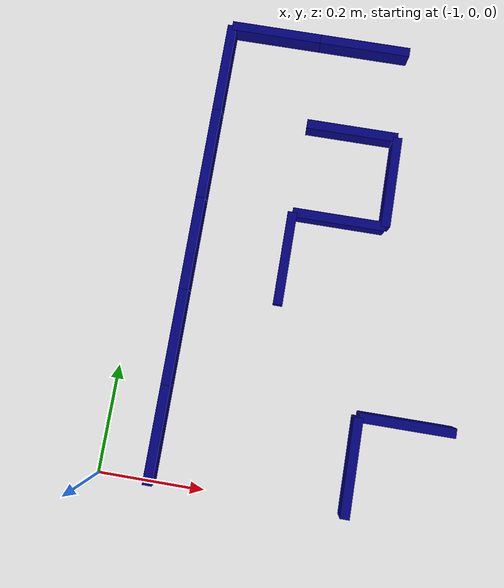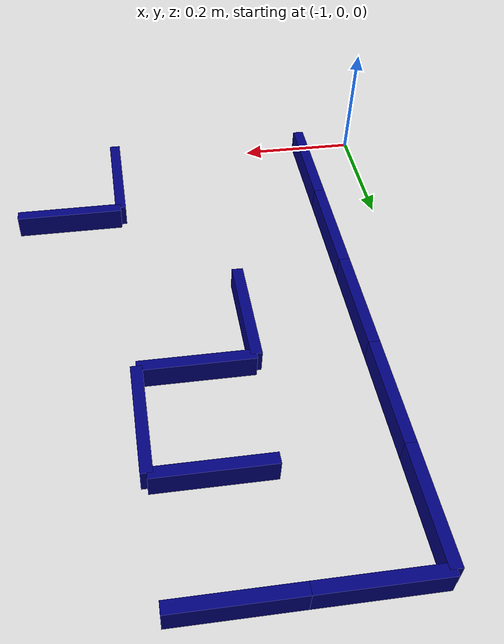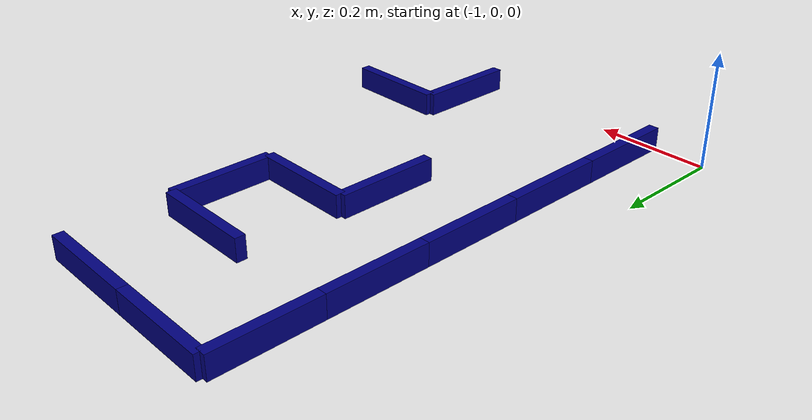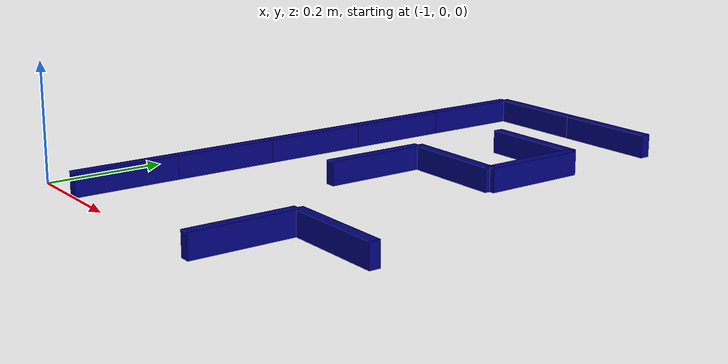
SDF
<sdf version="1.6">
 <world name="room">
  <include><uri>model://sun</uri></include>
  <model name="wall1">
   <static>true</static>
   <pose>-0.63 0.72 0.02 0 0 0</pose>
   <link name="tile1">
    <pose>0 0 0.001 0 0 0</pose>
    <visual name="visual">
     <geometry><box><size>0.18 0.018000000000000002 0.04</size></box></geometry>
     <material><ambient>0 0 0.5 0</ambient></material>
    </visual>
    <collision name="collision">
     <geometry><box><size>0.18 0.018000000000000002 0.04</size></box></geometry>
    </collision>
   </link>
  </model>
  <model name="wall5">
   <static>true</static>
   <pose>-0.54 0.63 0.02 0 0 0</pose>
   <link name="tile5">
    <pose>0 0 0.001 0 0 0</pose>
    <visual name="visual">
     <geometry><box><size>0.018000000000000002 0.18 0.04</size></box></geometry>
     <material><ambient>0 0 0.5 0</ambient></material>
    </visual>
    <collision name="collision">
     <geometry><box><size>0.018000000000000002 0.18 0.04</size></box></geometry>
    </collision>
   </link>
  </model>
  <model name="wall12">
   <static>true</static>
   <pose>-0.72 0.45 0.02 0 0 0</pose>
   <link name="tile12">
    <pose>0 0 0.001 0 0 0</pose>
    <visual name="visual">
     <geometry><box><size>0.018000000000000002 0.18 0.04</size></box></geometry>
     <material><ambient>0 0 0.5 0</ambient></material>
    </visual>
    <collision name="collision">
     <geometry><box><size>0.018000000000000002 0.18 0.04</size></box></geometry>
    </collision>
   </link>
  </model>
  <model name="wall13">
   <static>true</static>
   <pose>-0.63 0.54 0.02 0 0 0</pose>
   <link name="tile13">
    <pose>0 0 0.001 0 0 0</pose>
    <visual name="visual">
     <geometry><box><size>0.18 0.018000000000000002 0.04</size></box></geometry>
     <material><ambient>0 0 0.5 0</ambient></material>
    </visual>
    <collision name="collision">
     <geometry><box><size>0.18 0.018000000000000002 0.04</size></box></geometry>
    </collision>
   </link>
  </model>
  <model name="wall20">
   <static>true</static>
   <pose>-0.45 0.18 0.02 0 0 0</pose>
   <link name="tile20">
    <pose>0 0 0.001 0 0 0</pose>
    <visual name="visual">
     <geometry><box><size>0.18 0.018000000000000002 0.04</size></box></geometry>
     <material><ambient>0 0 0.5 0</ambient></material>
    </visual>
    <collision name="collision">
     <geometry><box><size>0.18 0.018000000000000002 0.04</size></box></geometry>
    </collision>
   </link>
  </model>
  <model name="wall26">
   <static>true</static>
   <pose>-0.54 0.09 0.02 0 0 0</pose>
   <link name="tile26">
    <pose>0 0 0.001 0 0 0</pose>
    <visual name="visual">
     <geometry><box><size>0.018000000000000002 0.18 0.04</size></box></geometry>
     <material><ambient>0 0 0.5 0</ambient></material>
    </visual>
    <collision name="collision">
     <geometry><box><size>0.018000000000000002 0.18 0.04</size></box></geometry>
    </collision>
   </link>
  </model>
  <model name="wall64">
   <static>true</static>
   <pose>-0.81 0.9 0.02 0 0 0</pose>
   <link name="tile64">
    <pose>0 0 0.001 0 0 0</pose>
    <visual name="visual">
     <geometry><box><size>0.18 0.018000000000000002 0.04</size></box></geometry>
     <material><ambient>0 0 0.5 0</ambient></material>
    </visual>
    <collision name="collision">
     <geometry><box><size>0.18 0.018000000000000002 0.04</size></box></geometry>
    </collision>
   </link>
  </model>
  <model name="wall65">
   <static>true</static>
   <pose>-0.63 0.9 0.02 0 0 0</pose>
   <link name="tile65">
    <pose>0 0 0.001 0 0 0</pose>
    <visual name="visual">
     <geometry><box><size>0.18 0.018000000000000002 0.04</size></box></geometry>
     <material><ambient>0 0 0.5 0</ambient></material>
    </visual>
    <collision name="collision">
     <geometry><box><size>0.18 0.018000000000000002 0.04</size></box></geometry>
    </collision>
   </link>
  </model>
  <model name="wall84">
   <static>true</static>
   <pose>-0.9 0.81 0.02 0 0 0</pose>
   <link name="tile84">
    <pose>0 0 0.001 0 0 0</pose>
    <visual name="visual">
     <geometry><box><size>0.018000000000000002 0.18 0.04</size></box></geometry>
     <material><ambient>0 0 0.5 0</ambient></material>
    </visual>
    <collision name="collision">
     <geometry><box><size>0.018000000000000002 0.18 0.04</size></box></geometry>
    </collision>
   </link>
  </model>
  <model name="wall85">
   <static>true</static>
   <pose>-0.9 0.63 0.02 0 0 0</pose>
   <link name="tile85">
    <pose>0 0 0.001 0 0 0</pose>
    <visual name="visual">
     <geometry><box><size>0.018000000000000002 0.18 0.04</size></box></geometry>
     <material><ambient>0 0 0.5 0</ambient></material>
    </visual>
    <collision name="collision">
     <geometry><box><size>0.018000000000000002 0.18 0.04</size></box></geometry>
    </collision>
   </link>
  </model>
  <model name="wall86">
   <static>true</static>
   <pose>-0.9 0.45 0.02 0 0 0</pose>
   <link name="tile86">
    <pose>0 0 0.001 0 0 0</pose>
    <visual name="visual">
     <geometry><box><size>0.018000000000000002 0.18 0.04</size></box></geometry>
     <material><ambient>0 0 0.5 0</ambient></material>
    </visual>
    <collision name="collision">
     <geometry><box><size>0.018000000000000002 0.18 0.04</size></box></geometry>
    </collision>
   </link>
  </model>
  <model name="wall87">
   <static>true</static>
   <pose>-0.9 0.27 0.02 0 0 0</pose>
   <link name="tile87">
    <pose>0 0 0.001 0 0 0</pose>
    <visual name="visual">
     <geometry><box><size>0.018000000000000002 0.18 0.04</size></box></geometry>
     <material><ambient>0 0 0.5 0</ambient></material>
    </visual>
    <collision name="collision">
     <geometry><box><size>0.018000000000000002 0.18 0.04</size></box></geometry>
    </collision>
   </link>
  </model>
  <model name="wall88">
   <static>true</static>
   <pose>-0.9 0.09 0.02 0 0 0</pose>
   <link name="tile88">
    <pose>0 0 0.001 0 0 0</pose>
    <visual name="visual">
     <geometry><box><size>0.018000000000000002 0.18 0.04</size></box></geometry>
     <material><ambient>0 0 0.5 0</ambient></material>
    </visual>
    <collision name="collision">
     <geometry><box><size>0.018000000000000002 0.18 0.04</size></box></geometry>
    </collision>
   </link>
  </model>
 </world>
</sdf>
